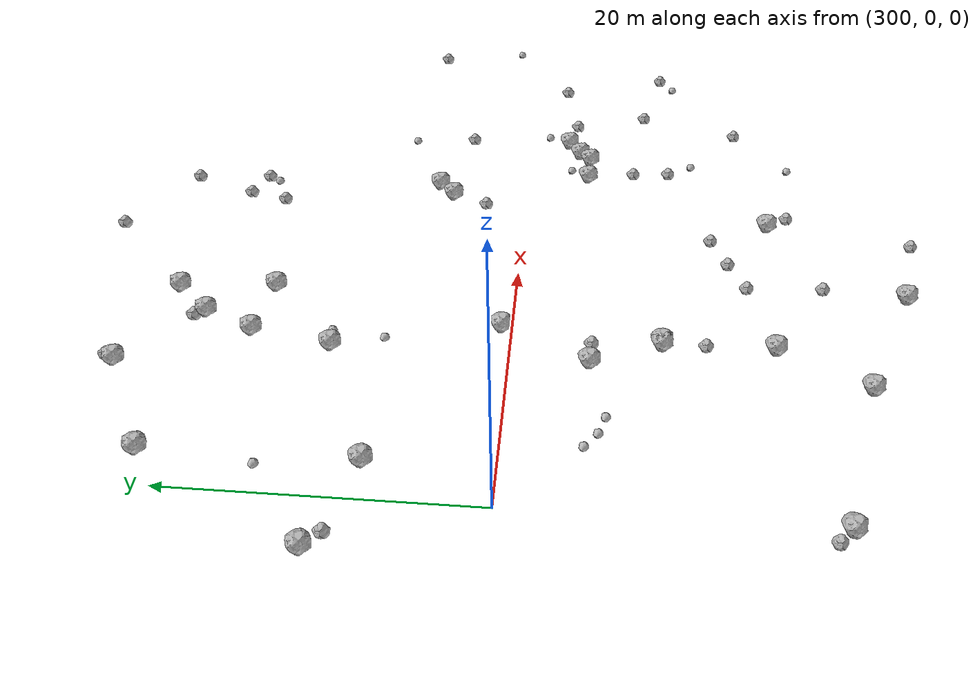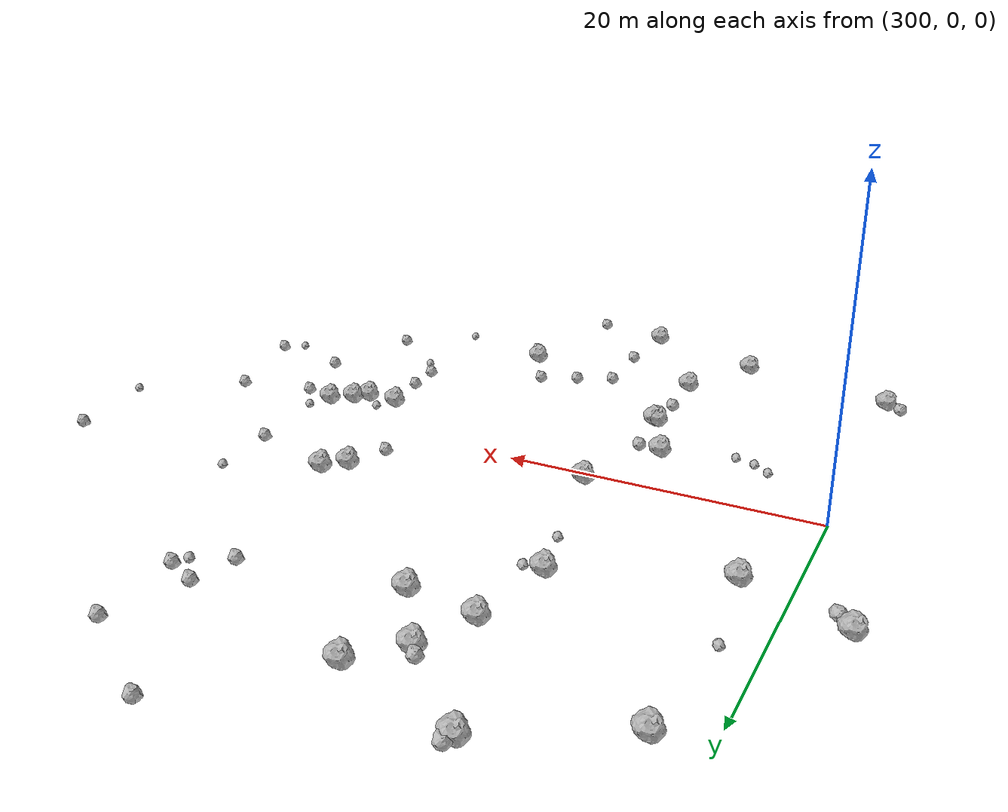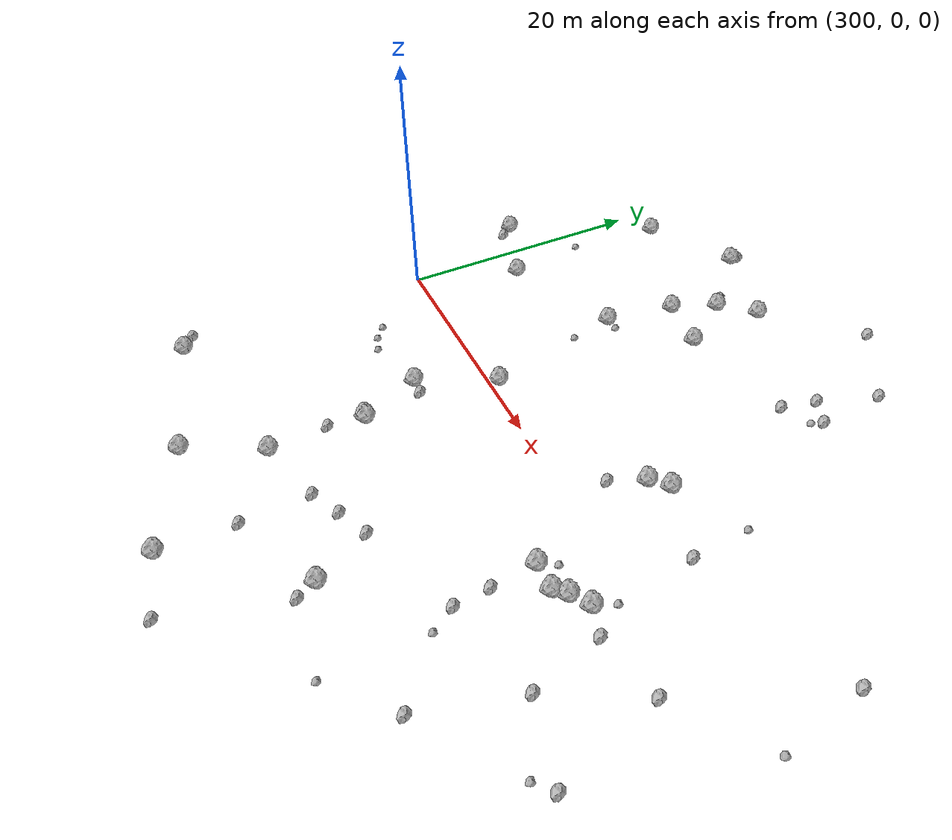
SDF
<sdf version="1.6">
 <world name="default">
  <include><uri>model://sun</uri></include>
  <model name="rock1_8_3">
   <include><uri>model://rock1</uri><pose>326.63158048883884 -17.98034780438838 0.5 0 0 0</pose></include>
  </model>
  <model name="rock1_8_4">
   <include><uri>model://rock1</uri><pose>300.23299362145394 -20.16826758780747 0.5 0 0 0</pose></include>
  </model>
  <model name="rock1_8_5">
   <include><uri>model://rock1</uri><pose>302.88084023520673 8.099376461162585 0.5 0 0 0</pose></include>
  </model>
  <model name="rock1_8_6">
   <include><uri>model://rock1</uri><pose>316.9005368111601 23.413416297475997 0.5 0 0 0</pose></include>
  </model>
  <model name="rock1_8_7">
   <include><uri>model://rock1</uri><pose>328.7095170938229 5.657237478572242 0.5 0 0 0</pose></include>
  </model>
  <model name="rock1_8_8">
   <include><uri>model://rock1</uri><pose>296.7433596174941 10.384776012999332 0.5 0 0 0</pose></include>
  </model>
  <model name="rock1_8_9">
   <include><uri>model://rock1</uri><pose>302.746737398364 21.709813783242396 0.5 0 0 0</pose></include>
  </model>
  <model name="rock1_8_10">
   <include><uri>model://rock1</uri><pose>333.99291634219236 -4.71657960464881 0.5 0 0 0</pose></include>
  </model>
  <model name="rock1_8_11">
   <include><uri>model://rock1</uri><pose>317.4670435677264 16.77071402368415 0.5 0 0 0</pose></include>
  </model>
  <model name="rock1_8_12">
   <include><uri>model://rock1</uri><pose>336.20993494827945 -2.9825181317062253 0.5 0 0 0</pose></include>
  </model>
  <model name="rock1_8_13">
   <include><uri>model://rock1</uri><pose>313.97374677447385 -9.903484815528792 0.5 0 0 0</pose></include>
  </model>
  <model name="rock1_8_14">
   <include><uri>model://rock1</uri><pose>313.74616255452406 -9.912074577104807 0.5 0 0 0</pose></include>
  </model>
  <model name="rock1_8_15">
   <include><uri>model://rock1</uri><pose>313.94098692941037 -17.352070185588282 0.5 0 0 0</pose></include>
  </model>
  <model name="rock1_8_16">
   <include><uri>model://rock1</uri><pose>313.1096139676461 17.420641391437094 0.5 0 0 0</pose></include>
  </model>
  <model name="rock1_8_17">
   <include><uri>model://rock1</uri><pose>311.84917805848306 -5.163782986804218 0.5 0 0 0</pose></include>
  </model>
  <model name="rock1_8_18">
   <include><uri>model://rock1</uri><pose>314.58678220989316 20.921148765558364 0.5 0 0 0</pose></include>
  </model>
  <model name="rock1_8_19">
   <include><uri>model://rock1</uri><pose>314.67760906511694 0.7689829086141415 0.5 0 0 0</pose></include>
  </model>
  <model name="rock1_8_20">
   <include><uri>model://rock1</uri><pose>310.9279264873848 -23.11003833955786 0.5 0 0 0</pose></include>
  </model>
  <model name="rock1_8_21">
   <include><uri>model://rock1</uri><pose>319.5544213510839 -26.847721509065167 0.5 0 0 0</pose></include>
  </model>
  <model name="rock1_8_22">
   <include><uri>model://rock1</uri><pose>334.8038859967885 -3.901531616550283 0.5 0 0 0</pose></include>
  </model>
  <model name="rock1_8_23">
   <include><uri>model://rock1</uri><pose>331.7255702222977 -4.618000896623521 0.5 0 0 0</pose></include>
  </model>
  <model name="rock1_8_24">
   <include><uri>model://rock1</uri><pose>312.13333836359726 11.871673575286849 0.5 0 0 0</pose></include>
  </model>
  <model name="rock1_8_25">
   <include><uri>model://rock1</uri><pose>309.71257843162556 25.612585721917135 0.5 0 0 0</pose></include>
  </model>
  <model name="rock1_8_26">
   <include><uri>model://rock1</uri><pose>329.9576496531715 6.837854043635311 0.5 0 0 0</pose></include>
  </model>
  <model name="rock2_8_0">
   <include><uri>model://rock2</uri><pose>329.653181510081 20.324675384135013 0.3 0 0 0</pose></include>
  </model>
  <model name="rock2_8_1">
   <include><uri>model://rock2</uri><pose>327.35772380827024 -19.49102697773509 0.3 0 0 0</pose></include>
  </model>
  <model name="rock2_8_2">
   <include><uri>model://rock2</uri><pose>313.5994336158129 -12.783868655093926 0.3 0 0 0</pose></include>
  </model>
  <model name="rock2_8_3">
   <include><uri>model://rock2</uri><pose>329.2621674781881 25.828076624465204 0.3 0 0 0</pose></include>
  </model>
  <model name="rock2_8_4">
   <include><uri>model://rock2</uri><pose>327.5023475149518 3.0523772558656646 0.3 0 0 0</pose></include>
  </model>
  <model name="rock2_8_5">
   <include><uri>model://rock2</uri><pose>299.10514223083374 -19.245411440886112 0.3 0 0 0</pose></include>
  </model>
  <model name="rock2_8_6">
   <include><uri>model://rock2</uri><pose>327.59746587292835 21.250487781252595 0.3 0 0 0</pose></include>
  </model>
  <model name="rock2_8_7">
   <include><uri>model://rock2</uri><pose>313.9621184964717 21.63604957695256 0.3 0 0 0</pose></include>
  </model>
  <model name="rock2_8_8">
   <include><uri>model://rock2</uri><pose>309.8820785806146 26.22126964814747 0.3 0 0 0</pose></include>
  </model>
  <model name="rock2_8_9">
   <include><uri>model://rock2</uri><pose>337.9785487763064 -16.4203314775376 0.3 0 0 0</pose></include>
  </model>
  <model name="rock2_8_10">
   <include><uri>model://rock2</uri><pose>335.896947913639 4.801872779202881 0.3 0 0 0</pose></include>
  </model>
  <model name="rock2_8_11">
   <include><uri>model://rock2</uri><pose>332.09956242746836 -8.14058651871537 0.3 0 0 0</pose></include>
  </model>
  <model name="rock2_8_12">
   <include><uri>model://rock2</uri><pose>340.04944732042765 -9.11194596508819 0.3 0 0 0</pose></include>
  </model>
  <model name="rock2_8_13">
   <include><uri>model://rock2</uri><pose>323.1954640893792 29.727041159590982 0.3 0 0 0</pose></include>
  </model>
  <model name="rock2_8_14">
   <include><uri>model://rock2</uri><pose>326.9419199193285 18.454690288742576 0.3 0 0 0</pose></include>
  </model>
  <model name="rock2_8_15">
   <include><uri>model://rock2</uri><pose>319.7105777037408 -21.161634223017643 0.3 0 0 0</pose></include>
  </model>
  <model name="rock2_8_16">
   <include><uri>model://rock2</uri><pose>297.6083440860621 9.326820760977647 0.3 0 0 0</pose></include>
  </model>
  <model name="rock2_8_17">
   <include><uri>model://rock2</uri><pose>348.49379974042387 8.574988250014513 0.3 0 0 0</pose></include>
  </model>
  <model name="rock2_8_18">
   <include><uri>model://rock2</uri><pose>319.4241835508088 -15.892807336477226 0.3 0 0 0</pose></include>
  </model>
  <model name="rock2_8_19">
   <include><uri>model://rock2</uri><pose>343.6444721895182 -2.601648116864869 0.3 0 0 0</pose></include>
  </model>
  <model name="rock2_8_20">
   <include><uri>model://rock2</uri><pose>324.8315185255569 -28.141693000394454 0.3 0 0 0</pose></include>
  </model>
  <model name="rock2_8_21">
   <include><uri>model://rock2</uri><pose>313.2912244774369 -5.275958983812533 0.3 0 0 0</pose></include>
  </model>
  <model name="rock2_8_22">
   <include><uri>model://rock2</uri><pose>338.44330483981025 -3.6288304745465965 0.3 0 0 0</pose></include>
  </model>
  <model name="rock2_8_23">
   <include><uri>model://rock2</uri><pose>321.8380160174678 -14.768053077269306 0.3 0 0 0</pose></include>
  </model>
  <model name="rock2_8_24">
   <include><uri>model://rock2</uri><pose>324.35604662044386 -13.70830325880998 0.3 0 0 0</pose></include>
  </model>
  <model name="rock2_8_25">
   <include><uri>model://rock2</uri><pose>332.3411356376342 -10.870389281578294 0.3 0 0 0</pose></include>
  </model>
  <model name="rock2_8_26">
   <include><uri>model://rock2</uri><pose>346.1123224515294 -10.601408859095997 0.3 0 0 0</pose></include>
  </model>
  <model name="rock3_8_0">
   <include><uri>model://rock3</uri><pose>301.95575310172035 14.342507287753321 0.2 0 0 0</pose></include>
  </model>
  <model name="rock3_8_1">
   <include><uri>model://rock3</uri><pose>349.88857675472843 1.8529981110394225 0.2 0 0 0</pose></include>
  </model>
  <model name="rock3_8_2">
   <include><uri>model://rock3</uri><pose>344.8244156102709 -11.690583586934963 0.2 0 0 0</pose></include>
  </model>
  <model name="rock3_8_3">
   <include><uri>model://rock3</uri><pose>332.3709162145341 -3.3498700980654874 0.2 0 0 0</pose></include>
  </model>
  <model name="rock3_8_4">
   <include><uri>model://rock3</uri><pose>336.7793064546363 -1.4153869949569504 0.2 0 0 0</pose></include>
  </model>
  <model name="rock3_8_5">
   <include><uri>model://rock3</uri><pose>313.2383952921754 11.932123327532217 0.2 0 0 0</pose></include>
  </model>
  <model name="rock3_8_6">
   <include><uri>model://rock3</uri><pose>307.09629232149354 -6.334128689630521 0.2 0 0 0</pose></include>
  </model>
  <model name="rock3_8_7">
   <include><uri>model://rock3</uri><pose>329.23265469465605 19.441290468971303 0.2 0 0 0</pose></include>
  </model>
  <model name="rock3_8_8">
   <include><uri>model://rock3</uri><pose>333.5342180881988 -20.30371902954542 0.2 0 0 0</pose></include>
  </model>
  <model name="rock3_8_9">
   <include><uri>model://rock3</uri><pose>333.48455632531653 -12.746413128672266 0.2 0 0 0</pose></include>
  </model>
  <model name="rock3_8_10">
   <include><uri>model://rock3</uri><pose>312.8521320396261 8.356225472494991 0.2 0 0 0</pose></include>
  </model>
  <model name="rock3_8_11">
   <include><uri>model://rock3</uri><pose>304.71567259613386 -5.033877413090895 0.2 0 0 0</pose></include>
  </model>
  <model name="rock3_8_12">
   <include><uri>model://rock3</uri><pose>305.7882828524257 -5.880584032298341 0.2 0 0 0</pose></include>
  </model>
  <model name="rock3_8_13">
   <include><uri>model://rock3</uri><pose>335.49627733521413 9.442695996165256 0.2 0 0 0</pose></include>
  </model>
 </world>
</sdf>
